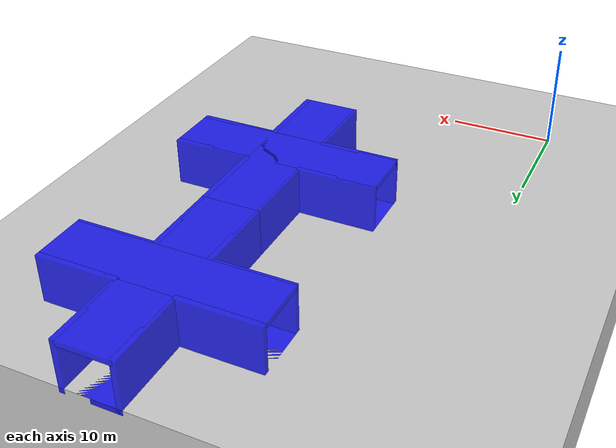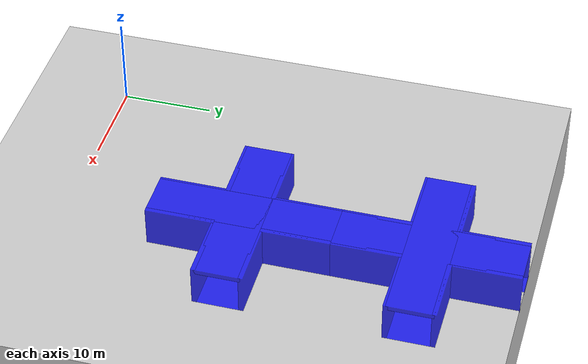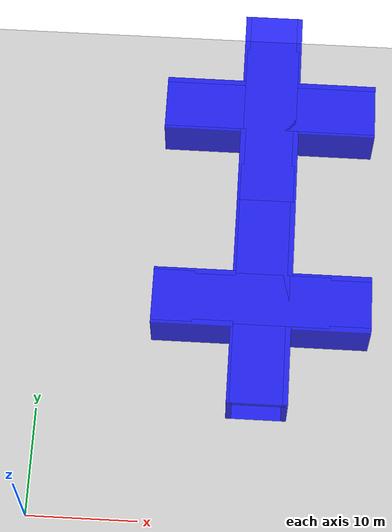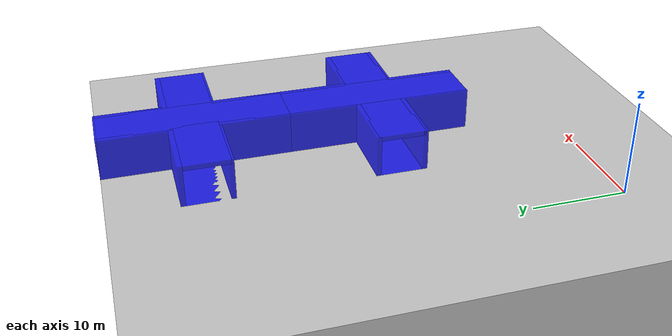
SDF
<sdf version="1.6">
 <world name="default">
  <model name="ground_plane">
   <static>true</static>
   <pose>30 0 0 0 0 0</pose>
   <link name="link">
    <collision name="collision">
     <pose>0 0 -5 0 0 0</pose>
     <geometry><box><size>100 100 10</size></box></geometry>
    </collision>
    <visual name="visual">
     <pose>0 0 -5 0 0 0</pose>
     <geometry><box><size>100 100 10</size></box></geometry>
     <material>
      <ambient>0.8 0.8 0.8 1</ambient>
      <diffuse>0.8 0.8 0.8 1</diffuse>
      <specular>0.8 0.8 0.8 1</specular>
      <emissive>0.8 0.8 0.8 1</emissive>
     </material>
    </visual>
   </link>
  </model>
  <model name="tunnel_tile_1_tile_3">
   <pose>20 20 0 0 0 0</pose>
   <static>true</static>
   <link name="link">
    <collision name="collision_0">
     <pose>0 0 -0.25 0 0 0</pose>
     <geometry><box><size>5 20 0.5</size></box></geometry>
    </collision>
    <visual name="visual_0">
     <pose>0 0 -0.25 0 0 0</pose>
     <geometry><box><size>5 20 0.5</size></box></geometry>
     <material><ambient>0 0 1 0.8</ambient><diffuse>0 0 1 0.8</diffuse><specular>1 1 1 0.8</specular></material>
    </visual>
    <collision name="collision_1">
     <pose>0 0 4.25 0 0 0</pose>
     <geometry><box><size>5 20 0.5</size></box></geometry>
    </collision>
    <visual name="visual_1">
     <pose>0 0 4.25 0 0 0</pose>
     <geometry><box><size>5 20 0.5</size></box></geometry>
     <material><ambient>0 0 1 0.8</ambient><diffuse>0 0 1 0.8</diffuse><specular>1 1 1 0.8</specular></material>
    </visual>
    <collision name="collision_2">
     <pose>0 0 -0.25 0 0 1.57</pose>
     <geometry><box><size>5 20 0.5</size></box></geometry>
    </collision>
    <visual name="visual_2">
     <pose>0 0 -0.25 0 0 1.57</pose>
     <geometry><box><size>5 20 0.5</size></box></geometry>
     <material><ambient>0 0 1 0.8</ambient><diffuse>0 0 1 0.8</diffuse><specular>1 1 1 0.8</specular></material>
    </visual>
    <collision name="collision_3">
     <pose>0 0 4.25 0 0 1.57</pose>
     <geometry><box><size>5 20 0.5</size></box></geometry>
    </collision>
    <visual name="visual_3">
     <pose>0 0 4.25 0 0 1.57</pose>
     <geometry><box><size>5 20 0.5</size></box></geometry>
     <material><ambient>0 0 1 0.8</ambient><diffuse>0 0 1 0.8</diffuse><specular>1 1 1 0.8</specular></material>
    </visual>
    <collision name="collision_4">
     <pose>-2.5 6.25 2 3.14 -1.57 0</pose>
     <geometry><box><size>5 7.5 0.5</size></box></geometry>
    </collision>
    <visual name="visual_4">
     <pose>-2.5 6.25 2 3.14 -1.57 0</pose>
     <geometry><box><size>5 7.5 0.5</size></box></geometry>
     <material><ambient>0 0 1 0.8</ambient><diffuse>0 0 1 0.8</diffuse><specular>1 1 1 0.8</specular></material>
    </visual>
    <collision name="collision_5">
     <pose>2.5 6.25 2 3.14 -1.57 0</pose>
     <geometry><box><size>5 7.5 0.5</size></box></geometry>
    </collision>
    <visual name="visual_5">
     <pose>2.5 6.25 2 3.14 -1.57 0</pose>
     <geometry><box><size>5 7.5 0.5</size></box></geometry>
     <material><ambient>0 0 1 0.8</ambient><diffuse>0 0 1 0.8</diffuse><specular>1 1 1 0.8</specular></material>
    </visual>
    <collision name="collision_6">
     <pose>-2.5 -6.25 2 3.14 -1.57 0</pose>
     <geometry><box><size>5 7.5 0.5</size></box></geometry>
    </collision>
    <visual name="visual_6">
     <pose>-2.5 -6.25 2 3.14 -1.57 0</pose>
     <geometry><box><size>5 7.5 0.5</size></box></geometry>
     <material><ambient>0 0 1 0.8</ambient><diffuse>0 0 1 0.8</diffuse><specular>1 1 1 0.8</specular></material>
    </visual>
    <collision name="collision_7">
     <pose>2.5 -6.25 2 3.14 -1.57 0</pose>
     <geometry><box><size>5 7.5 0.5</size></box></geometry>
    </collision>
    <visual name="visual_7">
     <pose>2.5 -6.25 2 3.14 -1.57 0</pose>
     <geometry><box><size>5 7.5 0.5</size></box></geometry>
     <material><ambient>0 0 1 0.8</ambient><diffuse>0 0 1 0.8</diffuse><specular>1 1 1 0.8</specular></material>
    </visual>
    <collision name="collision_8">
     <pose>6.25 2.5 2 1.57 1.57 0</pose>
     <geometry><box><size>5 7.5 0.5</size></box></geometry>
    </collision>
    <visual name="visual_8">
     <pose>6.25 2.5 2 1.57 1.57 0</pose>
     <geometry><box><size>5 7.5 0.5</size></box></geometry>
     <material><ambient>0 0 1 0.8</ambient><diffuse>0 0 1 0.8</diffuse><specular>1 1 1 0.8</specular></material>
    </visual>
    <collision name="collision_9">
     <pose>-6.25 2.5 2 1.57 1.57 0</pose>
     <geometry><box><size>5 7.5 0.5</size></box></geometry>
    </collision>
    <visual name="visual_9">
     <pose>-6.25 2.5 2 1.57 1.57 0</pose>
     <geometry><box><size>5 7.5 0.5</size></box></geometry>
     <material><ambient>0 0 1 0.8</ambient><diffuse>0 0 1 0.8</diffuse><specular>1 1 1 0.8</specular></material>
    </visual>
    <collision name="collision_10">
     <pose>6.25 -2.5 2 1.57 1.57 0</pose>
     <geometry><box><size>5 7.5 0.5</size></box></geometry>
    </collision>
    <visual name="visual_10">
     <pose>6.25 -2.5 2 1.57 1.57 0</pose>
     <geometry><box><size>5 7.5 0.5</size></box></geometry>
     <material><ambient>0 0 1 0.8</ambient><diffuse>0 0 1 0.8</diffuse><specular>1 1 1 0.8</specular></material>
    </visual>
    <collision name="collision_11">
     <pose>-6.25 -2.5 2 1.57 1.57 0</pose>
     <geometry><box><size>5 7.5 0.5</size></box></geometry>
    </collision>
    <visual name="visual_11">
     <pose>-6.25 -2.5 2 1.57 1.57 0</pose>
     <geometry><box><size>5 7.5 0.5</size></box></geometry>
     <material><ambient>0 0 1 0.8</ambient><diffuse>0 0 1 0.8</diffuse><specular>1 1 1 0.8</specular></material>
    </visual>
   </link>
  </model>
  <model name="tunnel_tile_1_tile_4">
   <pose>20 40 0 0 0 1.5707963267948966</pose>
   <static>true</static>
   <link name="link">
    <collision name="collision_0">
     <pose>0 0 -0.25 0 0 0</pose>
     <geometry><box><size>5 20 0.5</size></box></geometry>
    </collision>
    <visual name="visual_0">
     <pose>0 0 -0.25 0 0 0</pose>
     <geometry><box><size>5 20 0.5</size></box></geometry>
     <material><ambient>0 0 1 0.8</ambient><diffuse>0 0 1 0.8</diffuse><specular>1 1 1 0.8</specular></material>
    </visual>
    <collision name="collision_1">
     <pose>0 0 4.25 0 0 0</pose>
     <geometry><box><size>5 20 0.5</size></box></geometry>
    </collision>
    <visual name="visual_1">
     <pose>0 0 4.25 0 0 0</pose>
     <geometry><box><size>5 20 0.5</size></box></geometry>
     <material><ambient>0 0 1 0.8</ambient><diffuse>0 0 1 0.8</diffuse><specular>1 1 1 0.8</specular></material>
    </visual>
    <collision name="collision_2">
     <pose>0 0 -0.25 0 0 1.57</pose>
     <geometry><box><size>5 20 0.5</size></box></geometry>
    </collision>
    <visual name="visual_2">
     <pose>0 0 -0.25 0 0 1.57</pose>
     <geometry><box><size>5 20 0.5</size></box></geometry>
     <material><ambient>0 0 1 0.8</ambient><diffuse>0 0 1 0.8</diffuse><specular>1 1 1 0.8</specular></material>
    </visual>
    <collision name="collision_3">
     <pose>0 0 4.25 0 0 1.57</pose>
     <geometry><box><size>5 20 0.5</size></box></geometry>
    </collision>
    <visual name="visual_3">
     <pose>0 0 4.25 0 0 1.57</pose>
     <geometry><box><size>5 20 0.5</size></box></geometry>
     <material><ambient>0 0 1 0.8</ambient><diffuse>0 0 1 0.8</diffuse><specular>1 1 1 0.8</specular></material>
    </visual>
    <collision name="collision_4">
     <pose>-2.5 6.25 2 3.14 -1.57 0</pose>
     <geometry><box><size>5 7.5 0.5</size></box></geometry>
    </collision>
    <visual name="visual_4">
     <pose>-2.5 6.25 2 3.14 -1.57 0</pose>
     <geometry><box><size>5 7.5 0.5</size></box></geometry>
     <material><ambient>0 0 1 0.8</ambient><diffuse>0 0 1 0.8</diffuse><specular>1 1 1 0.8</specular></material>
    </visual>
    <collision name="collision_5">
     <pose>2.5 6.25 2 3.14 -1.57 0</pose>
     <geometry><box><size>5 7.5 0.5</size></box></geometry>
    </collision>
    <visual name="visual_5">
     <pose>2.5 6.25 2 3.14 -1.57 0</pose>
     <geometry><box><size>5 7.5 0.5</size></box></geometry>
     <material><ambient>0 0 1 0.8</ambient><diffuse>0 0 1 0.8</diffuse><specular>1 1 1 0.8</specular></material>
    </visual>
    <collision name="collision_6">
     <pose>-2.5 -6.25 2 3.14 -1.57 0</pose>
     <geometry><box><size>5 7.5 0.5</size></box></geometry>
    </collision>
    <visual name="visual_6">
     <pose>-2.5 -6.25 2 3.14 -1.57 0</pose>
     <geometry><box><size>5 7.5 0.5</size></box></geometry>
     <material><ambient>0 0 1 0.8</ambient><diffuse>0 0 1 0.8</diffuse><specular>1 1 1 0.8</specular></material>
    </visual>
    <collision name="collision_7">
     <pose>2.5 -6.25 2 3.14 -1.57 0</pose>
     <geometry><box><size>5 7.5 0.5</size></box></geometry>
    </collision>
    <visual name="visual_7">
     <pose>2.5 -6.25 2 3.14 -1.57 0</pose>
     <geometry><box><size>5 7.5 0.5</size></box></geometry>
     <material><ambient>0 0 1 0.8</ambient><diffuse>0 0 1 0.8</diffuse><specular>1 1 1 0.8</specular></material>
    </visual>
    <collision name="collision_8">
     <pose>6.25 2.5 2 1.57 1.57 0</pose>
     <geometry><box><size>5 7.5 0.5</size></box></geometry>
    </collision>
    <visual name="visual_8">
     <pose>6.25 2.5 2 1.57 1.57 0</pose>
     <geometry><box><size>5 7.5 0.5</size></box></geometry>
     <material><ambient>0 0 1 0.8</ambient><diffuse>0 0 1 0.8</diffuse><specular>1 1 1 0.8</specular></material>
    </visual>
    <collision name="collision_9">
     <pose>-6.25 2.5 2 1.57 1.57 0</pose>
     <geometry><box><size>5 7.5 0.5</size></box></geometry>
    </collision>
    <visual name="visual_9">
     <pose>-6.25 2.5 2 1.57 1.57 0</pose>
     <geometry><box><size>5 7.5 0.5</size></box></geometry>
     <material><ambient>0 0 1 0.8</ambient><diffuse>0 0 1 0.8</diffuse><specular>1 1 1 0.8</specular></material>
    </visual>
    <collision name="collision_10">
     <pose>6.25 -2.5 2 1.57 1.57 0</pose>
     <geometry><box><size>5 7.5 0.5</size></box></geometry>
    </collision>
    <visual name="visual_10">
     <pose>6.25 -2.5 2 1.57 1.57 0</pose>
     <geometry><box><size>5 7.5 0.5</size></box></geometry>
     <material><ambient>0 0 1 0.8</ambient><diffuse>0 0 1 0.8</diffuse><specular>1 1 1 0.8</specular></material>
    </visual>
    <collision name="collision_11">
     <pose>-6.25 -2.5 2 1.57 1.57 0</pose>
     <geometry><box><size>5 7.5 0.5</size></box></geometry>
    </collision>
    <visual name="visual_11">
     <pose>-6.25 -2.5 2 1.57 1.57 0</pose>
     <geometry><box><size>5 7.5 0.5</size></box></geometry>
     <material><ambient>0 0 1 0.8</ambient><diffuse>0 0 1 0.8</diffuse><specular>1 1 1 0.8</specular></material>
    </visual>
   </link>
  </model>
 </world>
</sdf>
